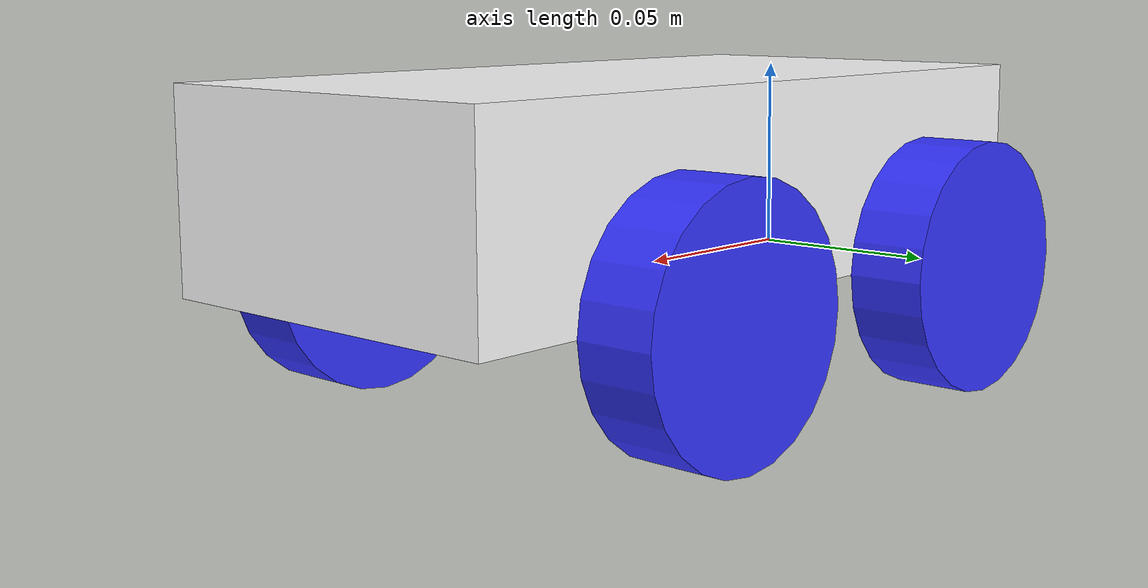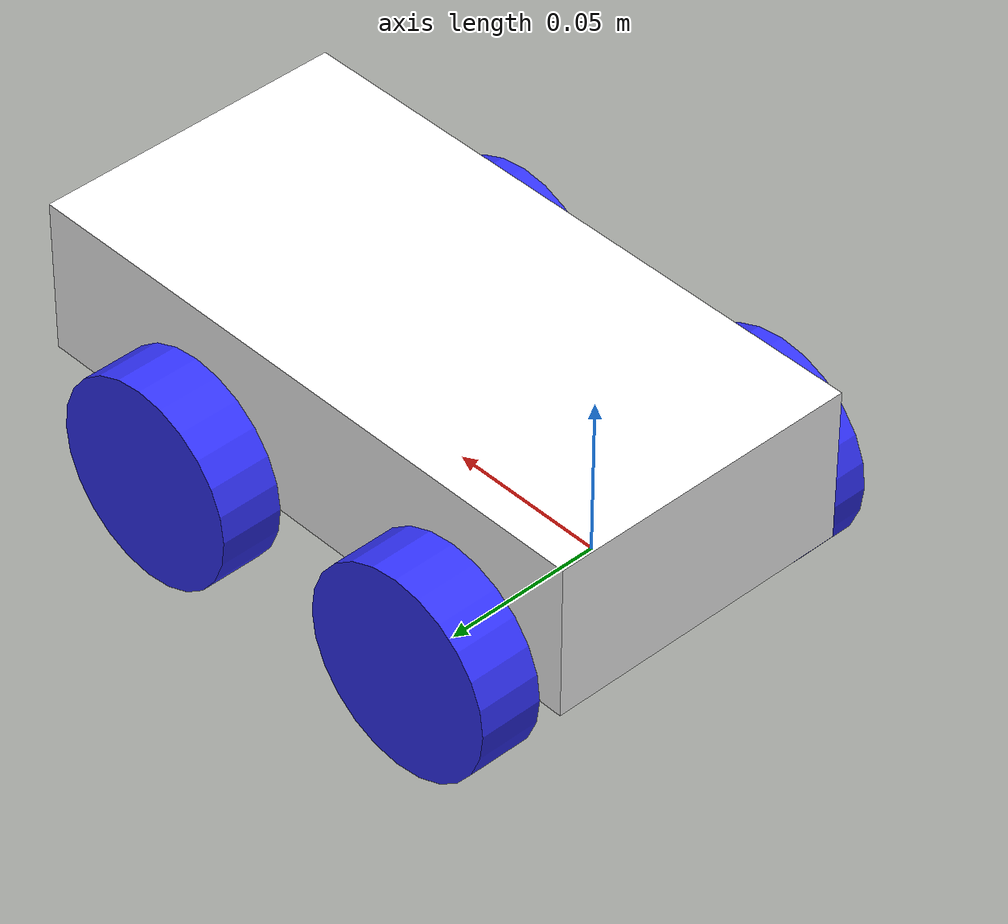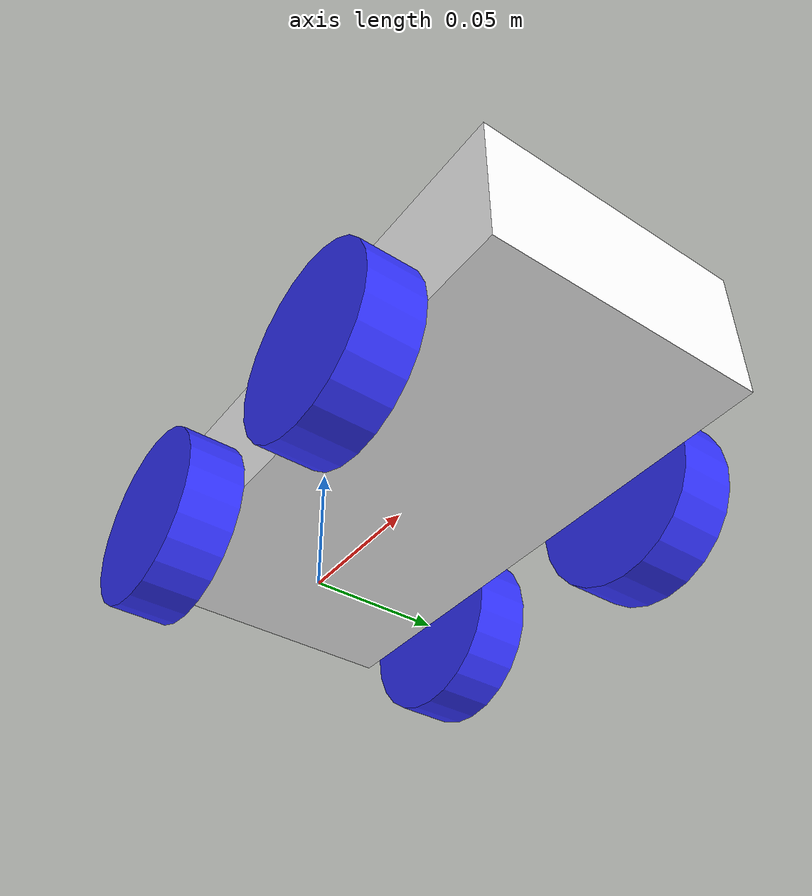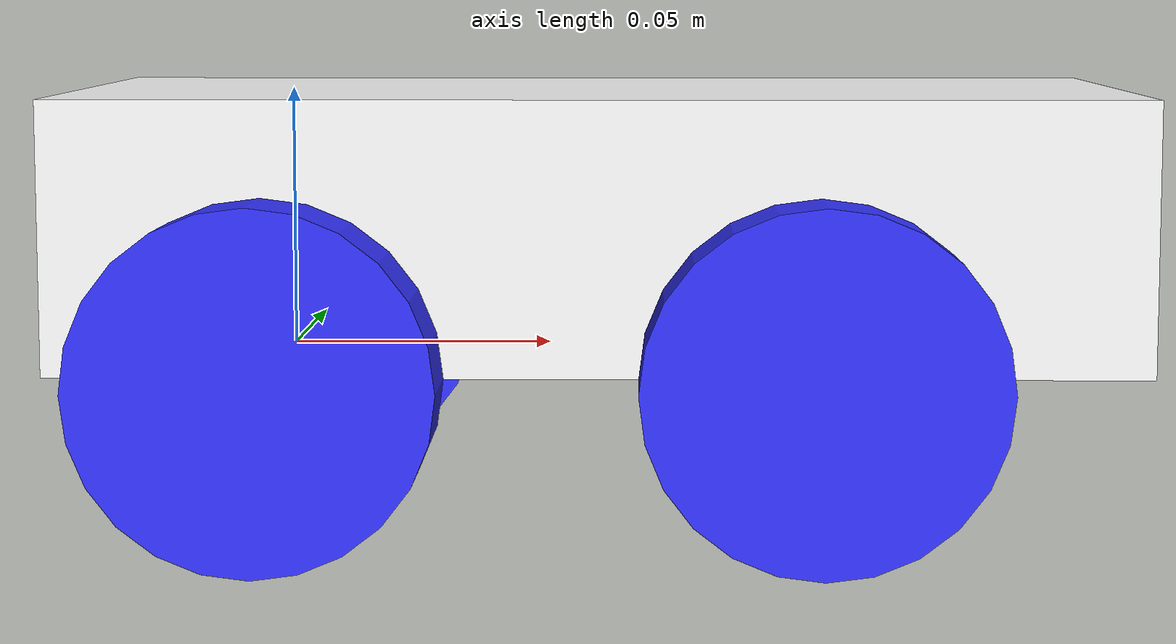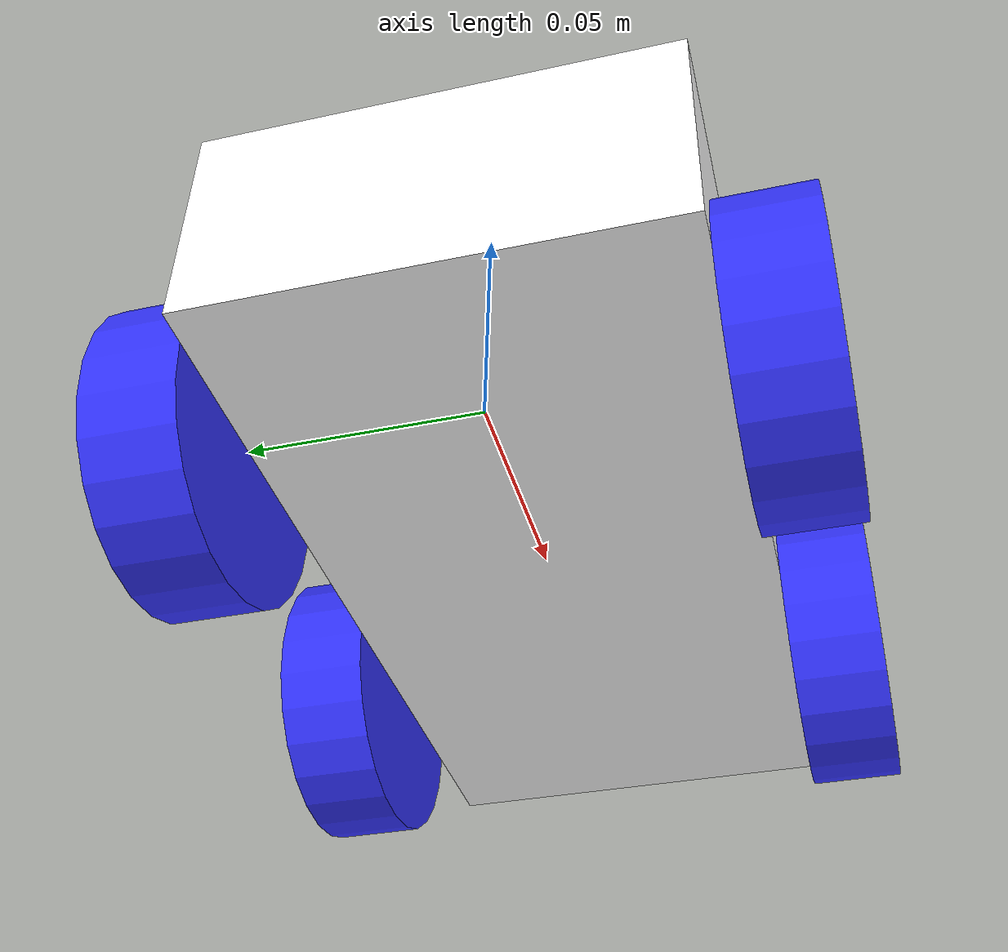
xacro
<?xml version="1.0"?>
<robot xmlns:xacro="http://www.ros.org/wiki/xacro">

    <xacro:include filename="inertial_macro.xacro" />

    <material name="white">
        <color rgba="1 1 1 1"/>
    </material>

    <material name="orange">
        <color rgba="1 0.3 0.1 1"/>
    </material>

    <material name="blue">
        <color rgba="0.2 0.2 1 1"/>
    </material>

    <material name="black">
        <color rgba="0 0 0 1"/>
    </material>

    <!-- Base Link -->
    <link name = "base_link">
    </link>

    <!-- Chassis Link -->
    <joint name="chassis_joint" type="fixed">
        <parent link="base_link"/>
        <child link="chassis"/>
        <origin xyz= "-0.04 0 0"/>
    </joint>

    <link name = "chassis">
        <visual>
            <origin xyz="0.1 0 0.025"/>
            <geometry>
                <box size = "0.2 0.1 0.05"/>
            </geometry>
            <material name = "white"/>
        </visual>
        <collision>
            <origin xyz="0.1 0 0.025"/>
            <geometry>
                <box size = "0.2 0.07 0.05"/>
            </geometry>
        </collision>
        <xacro:inertial_box mass="0.3" x="0.2" y= "0.07" z="0.05">
            <origin  xyz="0.1 0 0.025" rpy="0 0 0"/>
        </xacro:inertial_box>
    </link>

    <gazebo reference="chassis">
        <material>Gazebo/White</material>
    </gazebo>

    <!-- Rear Left Wheel Link -->
    <joint name="rear_left_wheel_joint" type="continuous">
        <parent link="base_link"/>
        <child link="rear_left_wheel"/>
        <origin xyz= "0 0.06 0" rpy="-${pi/2} 0 0" />
        <axis xyz="0 0 1"/>
    </joint>

    <link name = "rear_left_wheel">
        <visual>
            <geometry>
                <cylinder radius = "0.0325" length = "0.02"/>
            </geometry>
            <material name = "blue"/>
        </visual>
        <collision>
            <geometry>
                <cylinder radius = "0.0325" length = "0.02"/>
            </geometry>
        </collision>
        <xacro:inertial_cylinder mass="0.05" length="0.02" radius="0.0325">
            <origin xyz="0 0 0" rpy="0 0 0"/>
        </xacro:inertial_cylinder>
    </link>

    <gazebo reference="rear_left_wheel">
        <material>Gazebo/Blue</material>
    </gazebo>

    <!-- Rear Right Wheel Link -->
    <joint name="rear_right_wheel_joint" type="continuous">
        <parent link="base_link"/>
        <child link="rear_right_wheel"/>
        <origin xyz= "0 -0.06 0" rpy="${pi/2} 0 0" />
        <axis xyz="0 0 -1"/>
    </joint>

    <link name = "rear_right_wheel">
        <visual>
            <geometry>
                <cylinder radius = "0.0325" length = "0.02"/>
            </geometry>
            <material name = "blue"/>
        </visual>
        <collision>
            <geometry>
                <cylinder radius = "0.0325" length = "0.02"/>
            </geometry>
        </collision>
        <xacro:inertial_cylinder mass="0.05" length="0.02" radius="0.0325">
            <origin xyz="0 0 0" rpy="0 0 0"/>
        </xacro:inertial_cylinder>
    </link>

    <gazebo reference="rear_right_wheel">
        <material>Gazebo/Blue</material>
    </gazebo>

    <!-- Front Left Wheel Link -->
    <joint name="front_left_wheel_joint" type="continuous">
        <parent link="chassis"/>
        <child link="front_left_wheel"/>
        <origin xyz= "0.14 0.06 0" rpy="-${pi/2} 0 0" />
        <axis xyz="0 0 1"/>
    </joint>

    <link name = "front_left_wheel">
        <visual>
            <geometry>
                <cylinder radius = "0.0325" length = "0.02"/>
            </geometry>
            <material name = "blue"/>
        </visual>
        <collision>
            <geometry>
                <cylinder radius = "0.0325" length = "0.02"/>
            </geometry>
        </collision>
        <xacro:inertial_cylinder mass="0.05" length="0.02" radius="0.0325">
            <origin xyz="0 0 0" rpy="0 0 0"/>
        </xacro:inertial_cylinder>
    </link>

    <gazebo reference="front_left_wheel">
        <material>Gazebo/Blue</material>
        <mu1 value="0.001"/>
        <mu2 value="0.001"/>
    </gazebo>

    <!-- Front Right Wheel Link -->
    <joint name="front_right_wheel_joint" type="continuous">
        <parent link="chassis"/>
        <child link="front_right_wheel"/>
        <origin xyz= "0.14 -0.06 0" rpy="${pi/2} 0 0" />
        <axis xyz="0 0 -1"/>
    </joint>

    <link name = "front_right_wheel">
        <visual>
            <geometry>
                <cylinder radius = "0.0325" length = "0.02"/>
            </geometry>
            <material name = "blue"/>
        </visual>
        <collision>
            <geometry>
                <cylinder radius = "0.0325" length = "0.02"/>
            </geometry>
        </collision>
        <xacro:inertial_cylinder mass="0.05" length="0.02" radius="0.0325">
            <origin xyz="0 0 0" rpy="0 0 0"/>
        </xacro:inertial_cylinder>
    </link>

    <gazebo reference="front_right_wheel">
        <material>Gazebo/Blue</material>
        <mu1 value="0.001"/>
        <mu2 value="0.001"/>
    </gazebo>

</robot>
